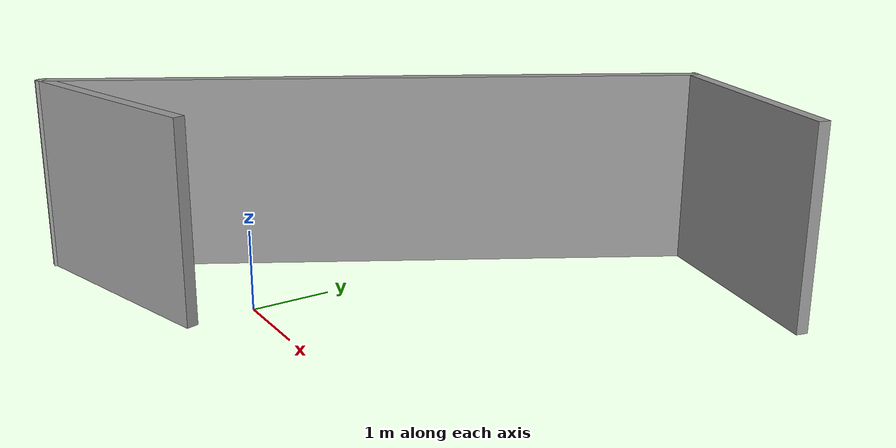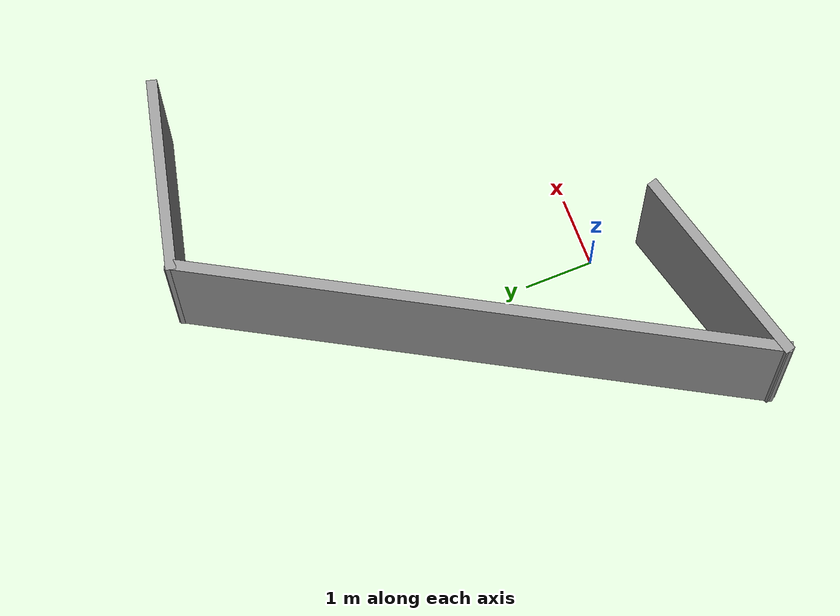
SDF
<?xml version='1.0'?>
<sdf version='1.6'>
  <model name='provamondo'>
    <pose frame=''>0.575017 2.06802 0 0 -0 0</pose>
    <link name='Wall_0'>
      <collision name='Wall_0_Collision'>
        <geometry>
          <box>
            <size>3 0.15 2.5</size>
          </box>
        </geometry>
        <pose frame=''>0 0 1.25 0 -0 0</pose>
      </collision>
      <visual name='Wall_0_Visual'>
        <pose frame=''>0 0 1.25 0 -0 0</pose>
        <geometry>
          <box>
            <size>3 0.15 2.5</size>
          </box>
        </geometry>
        <material>
          <script>
            <uri>file://media/materials/scripts/gazebo.material</uri>
            <name>Gazebo/Grey</name>
          </script>
          <ambient>1 1 1 1</ambient>
        </material>
      </visual>
      <pose frame=''>-1.96146 -3.24684 0 0 0 -2.87979</pose>
    </link>
    <link name='Wall_1'>
      <collision name='Wall_1_Collision'>
        <geometry>
          <box>
            <size>8.5 0.15 2.5</size>
          </box>
        </geometry>
        <pose frame=''>0 0 1.25 0 -0 0</pose>
      </collision>
      <visual name='Wall_1_Visual'>
        <pose frame=''>0 0 1.25 0 -0 0</pose>
        <geometry>
          <box>
            <size>8.5 0.15 2.5</size>
          </box>
        </geometry>
        <material>
          <script>
            <uri>file://media/materials/scripts/gazebo.material</uri>
            <name>Gazebo/Grey</name>
          </script>
          <ambient>1 1 1 1</ambient>
        </material>
      </visual>
      <pose frame=''>-1.2504 0 0 0 -0 1.0472</pose>
    </link>
    <link name='Wall_2'>
      <collision name='Wall_2_Collision'>
        <geometry>
          <box>
            <size>2.75 0.15 2.5</size>
          </box>
        </geometry>
        <pose frame=''>0 0 1.25 0 -0 0</pose>
      </collision>
      <visual name='Wall_2_Visual'>
        <pose frame=''>0 0 1.25 0 -0 0</pose>
        <geometry>
          <box>
            <size>2.75 0.15 2.5</size>
          </box>
        </geometry>
        <material>
          <script>
            <uri>file://media/materials/scripts/gazebo.material</uri>
            <name>Gazebo/Grey</name>
          </script>
          <ambient>1 1 1 1</ambient>
        </material>
      </visual>
      <pose frame=''>2.0928 3.27919 0 0 0 -0.261799</pose>
    </link>
    <static>1</static>
  </model>
</sdf>
